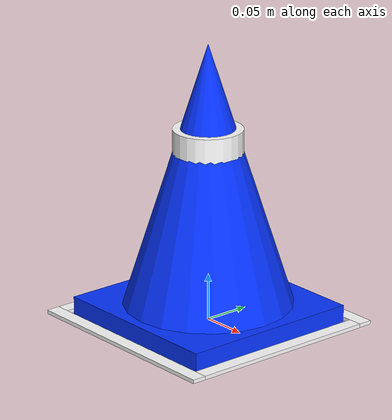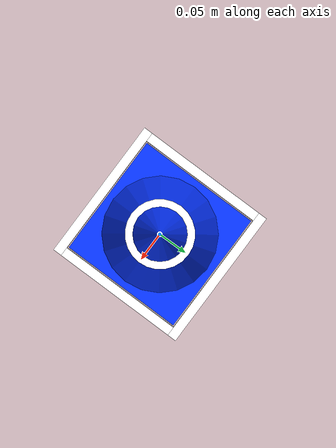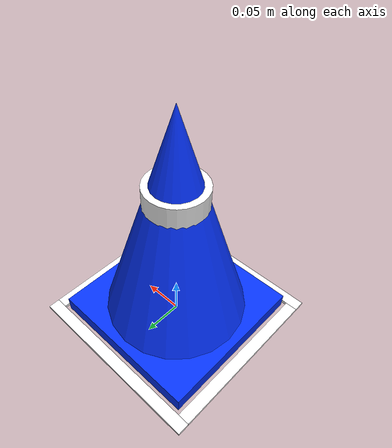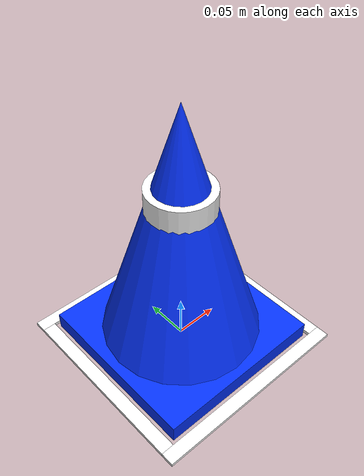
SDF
<?xml version="1.0"?>
<sdf version="1.9">
  <model name="track_cone_blue">
    <static>true</static>

    <link name="cone_link">
      <!-- White placement box required around every cone position. -->
      <visual name="position_box_front">
        <pose>0.0 0.1125 0.002 0 0 0</pose>
        <geometry><box><size>0.24 0.015 0.004</size></box></geometry>
        <material><ambient>1 1 1 1</ambient><diffuse>1 1 1 1</diffuse></material>
      </visual>
      <visual name="position_box_rear">
        <pose>0.0 -0.1125 0.002 0 0 0</pose>
        <geometry><box><size>0.24 0.015 0.004</size></box></geometry>
        <material><ambient>1 1 1 1</ambient><diffuse>1 1 1 1</diffuse></material>
      </visual>
      <visual name="position_box_left">
        <pose>0.1125 0.0 0.002 0 0 0</pose>
        <geometry><box><size>0.015 0.21 0.004</size></box></geometry>
        <material><ambient>1 1 1 1</ambient><diffuse>1 1 1 1</diffuse></material>
      </visual>
      <visual name="position_box_right">
        <pose>-0.1125 0.0 0.002 0 0 0</pose>
        <geometry><box><size>0.015 0.21 0.004</size></box></geometry>
        <material><ambient>1 1 1 1</ambient><diffuse>1 1 1 1</diffuse></material>
      </visual>

      <collision name="base_collision">
        <pose>0 0 0.01 0 0 0</pose>
        <geometry><box><size>0.20 0.20 0.02</size></box></geometry>
      </collision>
      <collision name="body_collision">
        <pose>0 0 0.16 0 0 0</pose>
        <geometry><cylinder><radius>0.05</radius><length>0.28</length></cylinder></geometry>
      </collision>

      <visual name="base_visual">
        <pose>0 0 0.01 0 0 0</pose>
        <geometry><box><size>0.20 0.20 0.02</size></box></geometry>
        <material>
          <ambient>0.01 0.13 0.65 1</ambient>
          <diffuse>0.02 0.20 1.00 1</diffuse>
        </material>
      </visual>
      <visual name="body_visual">
        <pose>0 0 0.16 0 0 0</pose>
        <geometry><cone><radius>0.09</radius><length>0.28</length></cone></geometry>
        <material>
          <ambient>0.01 0.13 0.65 1</ambient>
          <diffuse>0.02 0.20 1.00 1</diffuse>
        </material>
      </visual>
      <visual name="white_band_visual">
        <pose>0 0 0.19 0 0 0</pose>
        <geometry><cylinder><radius>0.037</radius><length>0.04</length></cylinder></geometry>
        <material>
          <ambient>0.95 0.95 0.95 1</ambient>
          <diffuse>1.00 1.00 1.00 1</diffuse>
        </material>
      </visual>
    </link>
  </model>
</sdf>
